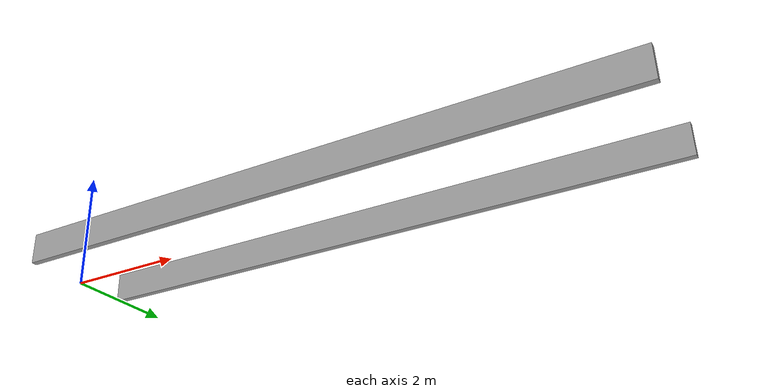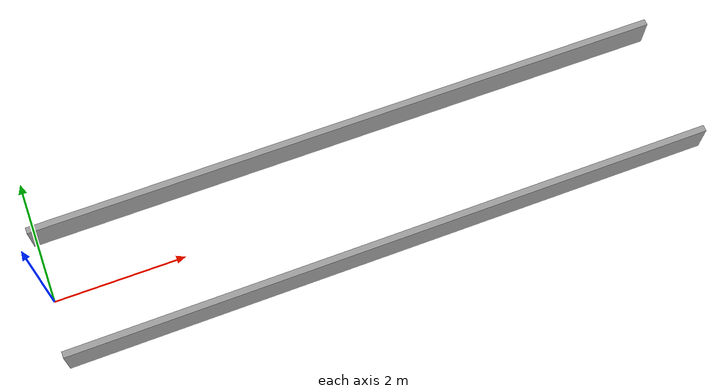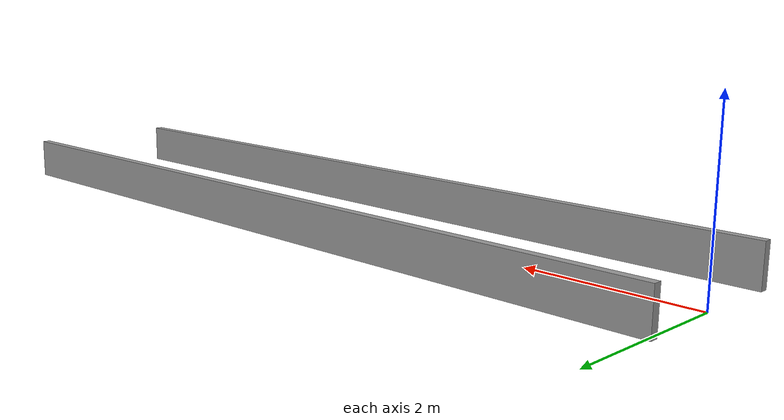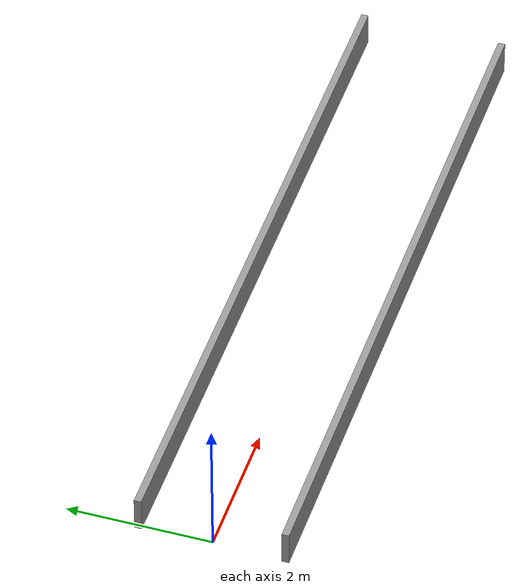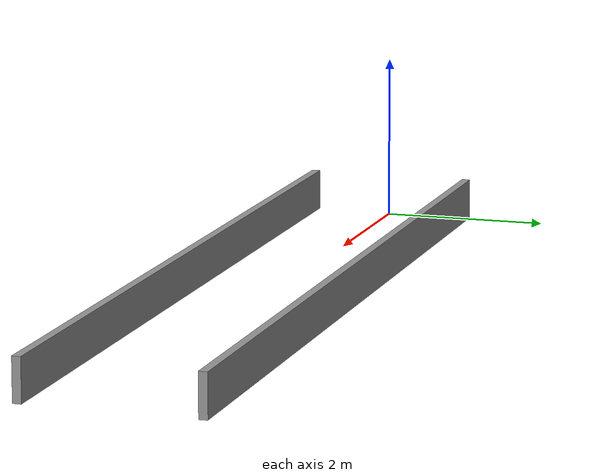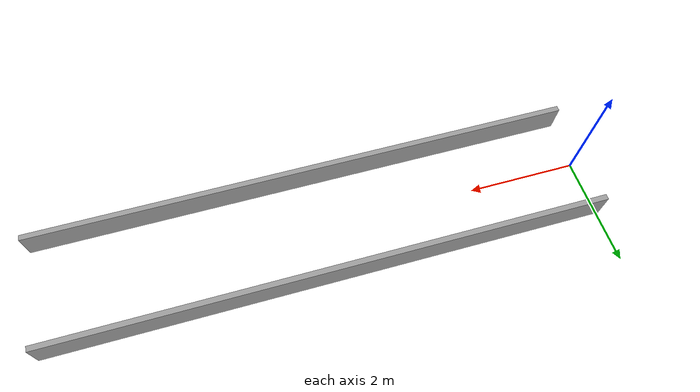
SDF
<?xml version='1.0'?>
<sdf version='1.7'>
  <model name='roads'>
    <pose>4.95 0 0 0 -0 0</pose>
    <link name='Wall_19'>
      <collision name='Wall_19_Collision'>
        <geometry>
          <box>
            <size>10 0.1 0.5</size>
          </box>
        </geometry>
        <pose>0 0 0.25 0 -0 0</pose>
      </collision>
      <visual name='Wall_19_Visual'>
        <pose>0 0 0.25 0 -0 0</pose>
        <geometry>
          <box>
            <size>10 0.1 0.5</size>
          </box>
        </geometry>
        <material>
          <script>
            <uri>file://media/materials/scripts/gazebo.material</uri>
            <name>Gazebo/Grey</name>
          </script>
          <ambient>1 1 1 1</ambient>
        </material>
        <meta>
          <layer>0</layer>
        </meta>
      </visual>
      <pose>0 1 0 0 -0 0</pose>
    </link>
    <link name='Wall_23'>
      <collision name='Wall_23_Collision'>
        <geometry>
          <box>
            <size>10 0.1 0.5</size>
          </box>
        </geometry>
        <pose>0 0 0.25 0 -0 0</pose>
      </collision>
      <visual name='Wall_23_Visual'>
        <pose>0 0 0.25 0 -0 0</pose>
        <geometry>
          <box>
            <size>10 0.1 0.5</size>
          </box>
        </geometry>
        <material>
          <script>
            <uri>file://media/materials/scripts/gazebo.material</uri>
            <name>Gazebo/Grey</name>
          </script>
          <ambient>1 1 1 1</ambient>
        </material>
        <meta>
          <layer>0</layer>
        </meta>
      </visual>
      <pose>0 -1 0 0 -0 0</pose>
    </link>
    <static>1</static>
  </model>
</sdf>
